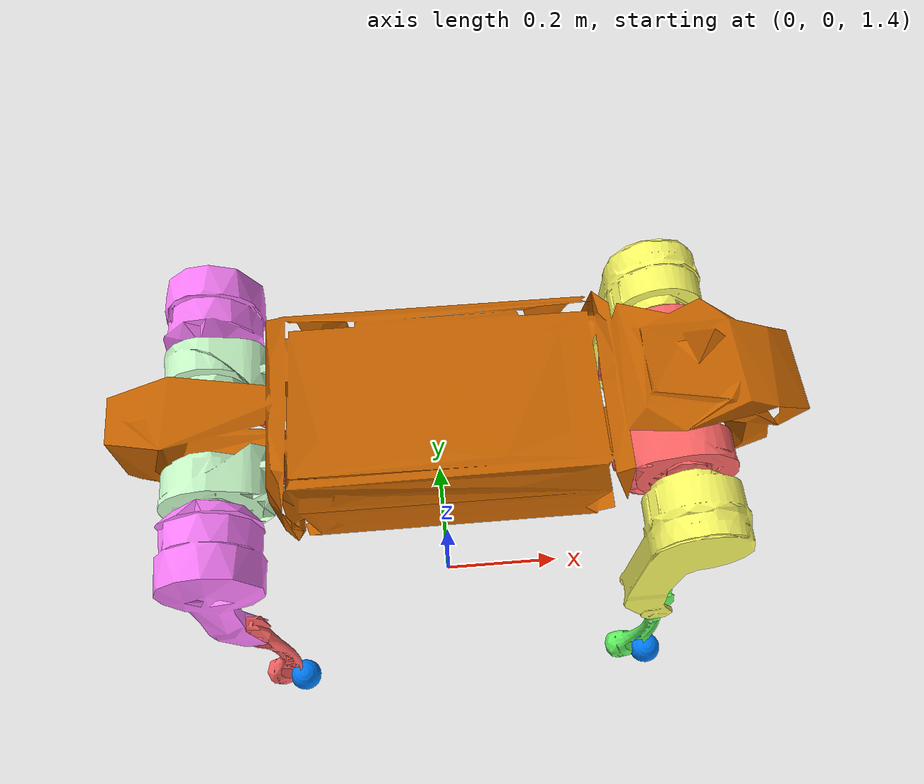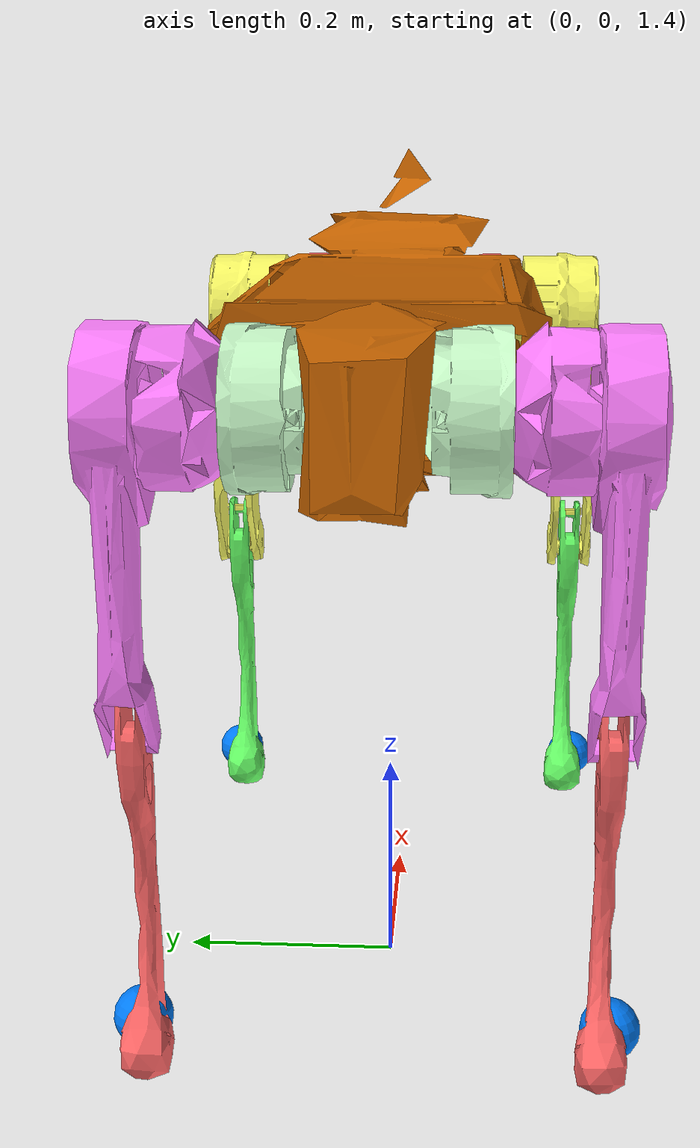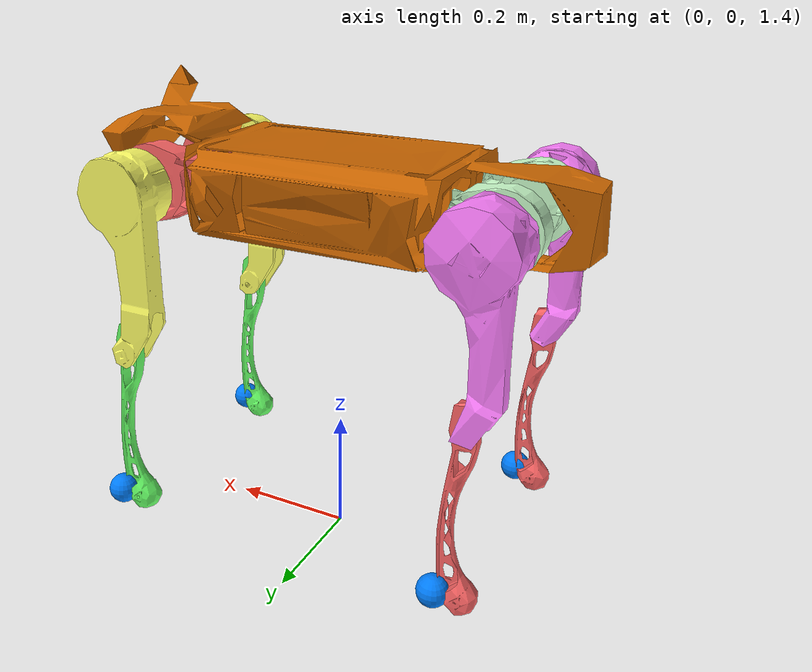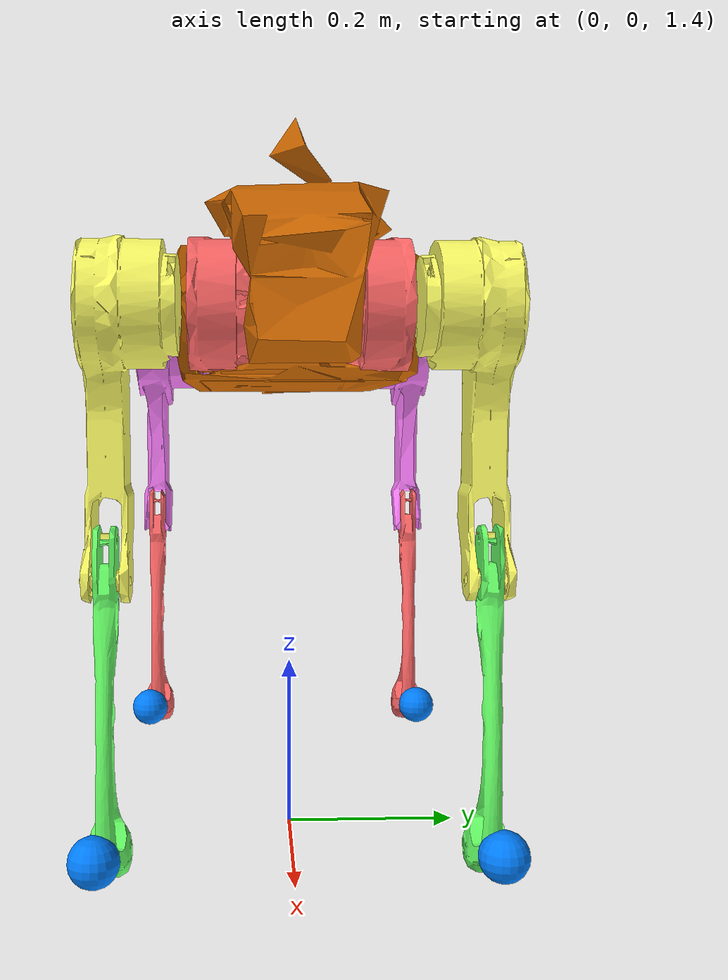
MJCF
<mujoco model="galileo_mini15">
    <compiler angle='radian' eulerseq="XYZ" meshdir="../meshes/" autolimits="true" />

    <default>
        <geom contype="0" conaffinity="0" solref="0.005 1" condim="3" friction="1 1" />
        <equality solref="0.005 1" />
        <default class="collision">
            <geom contype="1" group="3" type="capsule" />
            <default class="collision-left">
                <geom contype="2" conaffinity="4" />
            </default>
            <default class="collision-right">
                <geom contype="4" conaffinity="2" />
            </default>
        </default>
    </default>

    <asset>
        <mesh name="base_link_mesh_visual" file="trunk.STL" scale='1 1 1' />
        <mesh name="base_link_mesh_collision" file="trunk.STL" scale='1 1 1' />
        <mesh name="left_front_abad_mesh_visual" file="FL_abd_link.STL"
            scale='1 1 1' />
        <mesh name="left_front_abad_mesh_collision" file="FL_abd_link.STL"
            scale='1 1 1' />
        <mesh name="left_front_hip_mesh_visual" file="FL_hip_link.STL" scale='1 1 1' />
        <mesh name="left_front_hip_mesh_collision" file="FL_hip_link.STL"
            scale='1 1 1' />
        <mesh name="left_front_knee_mesh_visual" file="FL_knee_link.STL"
            scale='1 1 1' />
        <mesh name="left_front_knee_mesh_collision" file="FL_knee_link.STL"
            scale='1 1 1' />
        <mesh name="left_rear_abad_mesh_visual" file="RL_abd_link.STL" scale='1 1 1' />
        <mesh name="left_rear_abad_mesh_collision" file="RL_abd_link.STL"
            scale='1 1 1' />
        <mesh name="left_rear_hip_mesh_visual" file="RL_hip_link.STL" scale='1 1 1' />
        <mesh name="left_rear_hip_mesh_collision" file="RL_hip_link.STL"
            scale='1 1 1' />
        <mesh name="left_rear_knee_mesh_visual" file="RL_knee_link.STL"
            scale='1 1 1' />
        <mesh name="left_rear_knee_mesh_collision" file="RL_knee_link.STL"
            scale='1 1 1' />
        <mesh name="right_front_abad_mesh_visual" file="FL_abd_link.STL"
            scale='1.0 -1.0 1.0' />
        <mesh name="right_front_abad_mesh_collision" file="FL_abd_link.STL"
            scale='1.0 -1.0 1.0' />
        <mesh name="right_front_hip_mesh_visual" file="FL_hip_link.STL"
            scale='1.0 -1.0 1.0' />
        <mesh name="right_front_hip_mesh_collision" file="FL_hip_link.STL"
            scale='1.0 -1.0 1.0' />
        <mesh name="right_front_knee_mesh_visual" file="FL_knee_link.STL"
            scale='1.0 -1.0 1.0' />
        <mesh name="right_front_knee_mesh_collision" file="FL_knee_link.STL"
            scale='1.0 -1.0 1.0' />
        <mesh name="right_rear_abad_mesh_visual" file="RL_abd_link.STL"
            scale='1.0 -1.0 1.0' />
        <mesh name="right_rear_abad_mesh_collision" file="RL_abd_link.STL"
            scale='1.0 -1.0 1.0' />
        <mesh name="right_rear_hip_mesh_visual" file="RL_hip_link.STL"
            scale='1.0 -1.0 1.0' />
        <mesh name="right_rear_hip_mesh_collision" file="RL_hip_link.STL"
            scale='1.0 -1.0 1.0' />
        <mesh name="right_rear_knee_mesh_visual" file="RL_knee_link.STL"
            scale='1.0 -1.0 1.0' />
        <mesh name="right_rear_knee_mesh_collision" file="RL_knee_link.STL"
            scale='1.0 -1.0 1.0' />
        <!-- asset auto generate -->
    </asset>

    <worldbody>
        <body name='base_link' pos='0 0 2' euler='0 0 0'>
            <inertial pos="0.04811 0.0070863 0.010607" mass="9.2006"
                fullinertia="0.049689 0.11274 0.13302 0.00053321 -0.0010827 -6.3635e-05" />
            <freejoint />
            <site name="imu" size="0.01" pos="0 0 0" />
            <geom type='mesh' mesh='base_link_mesh_visual' pos='0 0 0' euler='0 0 0'
                rgba="0.8 0.4 0 1" />
            <geom type='mesh' mesh='base_link_mesh_collision' pos='0 0 0' euler='0 0 0'
                class="collision" />
            <!-- base_link site geom -->

            <body name='left_front_abad' pos='0.2065 0.065 0' euler='0 0 0'>
                <inertial pos="0.074261 0.010662 0.00797" mass="1.748"
                    fullinertia="0.000667447 0.00144482 0.00107312 -7.2909e-05 -1.0214e-05 5.08e-08" />
                <joint name='idx01_left_front_abad' type='hinge' axis='1 0 0' limited='true'
                    range='-0.80285 0.80285' damping='1' />
                <geom type='mesh' mesh='left_front_abad_mesh_visual' pos='0 0 0' euler='0 0 0'
                    rgba="1 0.4 0.4 1" />
                <geom type='mesh' mesh='left_front_abad_mesh_collision' pos='0 0 0' euler='0 0 0'
                    class="collision" />
                <!-- left_front_abad site geom -->

                <body name='left_front_hip' pos='0.08 0.119 0' euler='0 0 0'>
                    <inertial pos="-0.0014 -0.0344 -0.0174" mass="2.22606"
                        fullinertia="0.009416249 0.0090907891 0.0023041271 0.0001223515 -0.0004705786 0.0013313752" />
                    <joint name='idx02_left_front_hip' type='hinge' axis='0 1 0' limited='true'
                        range='-1.0472 4.1888' damping='1' />
                    <geom type='mesh' mesh='left_front_hip_mesh_visual' pos='0 0 0' euler='0 0 0'
                        rgba="1 1 0.4 1" />
                    <geom type='mesh' mesh='left_front_hip_mesh_collision' pos='0 0 0' euler='0 0 0'
                        class="collision" />
                    <!-- left_front_hip site geom -->

                    <body name='left_front_knee' pos='0 0.01 -0.26' euler='0 0 0'>
                        <inertial pos="0.0034 -0.0105 -0.13" mass="0.3261"
                            fullinertia="0.0046064111 0.0046485626 8.17992e-05 -9.9e-09 1.8937e-06 -4.4248e-06" />
                        <joint name='idx03_left_front_knee' type='hinge' axis='0 1 0' limited='true'
                            range='-2.6965 -0.9163' damping='1' />
                        <geom type='mesh' mesh='left_front_knee_mesh_visual' pos='0 0 0'
                            euler='0 0 0' rgba="0.4 1 0.4 1" />
                        <geom type='mesh' mesh='left_front_knee_mesh_collision' pos='0 0 0'
                            euler='0 0 0' class="collision" />
                        <!-- left_front_knee site geom -->

                        <body name='left_front_foot' pos='0.032939 0 -0.26149' euler='0 0 0'>
                            <inertial pos="0 0 0" mass="0.000204873572147578"
                                fullinertia="1.09600066619755e-09 1.09600066619755e-09 1.09600066619755e-09 0 0 0" />
                            <!-- left_front_foot joint -->
                            <geom type="sphere" size="0.025" pos='0 0 0'
                                euler='0 0 0' rgba="0 0.5 1 1" />
                            <geom type="sphere" size="0.025" pos='0 0 0'
                                euler='0 0 0' class="collision" />
                            <!-- left_front_foot site geom -->
                            <!-- left_front_foot child body -->
                        </body>
                        <!-- left_front_knee child body -->
                    </body>
                    <!-- left_front_hip child body -->
                </body>
                <!-- left_front_abad child body -->
            </body>

            <body name='left_rear_abad' pos='-0.2065 0.065 0' euler='0 0 0'>
                <inertial pos="0.074261 0.010662 0.00797" mass="1.748"
                    fullinertia="0.000667447 0.00144482 0.00107312 7.2909e-05 1.0214e-05 5.08e-08" />
                <joint name='idx05_left_rear_abad' type='hinge' axis='1 0 0' limited='true'
                    range='-0.80285 0.80285' damping='1' />
                <geom type='mesh' mesh='left_rear_abad_mesh_visual' pos='0 0 0' euler='0 0 0'
                    rgba="0.8 1.0 0.8 1" />
                <geom type='mesh' mesh='left_rear_abad_mesh_collision' pos='0 0 0' euler='0 0 0'
                    class="collision" />
                <!-- left_rear_abad site geom -->

                <body name='left_rear_hip' pos='-0.08 0.119 0' euler='0 0 0'>
                    <inertial pos="-0.0014 -0.0344 -0.0174" mass="2.22606"
                        fullinertia="0.009416249 0.0090907891 0.0023041271 0.0001223515 -0.0004705786 0.0013313752" />
                    <joint name='idx06_left_rear_hip' type='hinge' axis='0 1 0' limited='true'
                        range='-1.0472 4.1888' damping='1' />
                    <geom type='mesh' mesh='left_rear_hip_mesh_visual' pos='0 0 0' euler='0 0 0'
                        rgba="1 0.5 1 1" />
                    <geom type='mesh' mesh='left_rear_hip_mesh_collision' pos='0 0 0' euler='0 0 0'
                        class="collision" />
                    <!-- left_rear_hip site geom -->

                    <body name='left_rear_knee' pos='0 0.01 -0.26' euler='0 0 0'>
                        <inertial pos="0.0034 -0.0105 -0.13" mass="0.3261"
                            fullinertia="0.0046064111 0.0046485626 8.17992e-05 -9.9e-09 1.8937e-06 -4.4248e-06" />
                        <joint name='idx07_left_rear_knee' type='hinge' axis='0 1 0' limited='true'
                            range='-2.6965 -0.9163' damping='1' />
                        <geom type='mesh' mesh='left_rear_knee_mesh_visual' pos='0 0 0'
                            euler='0 0 0' rgba="1 0.4 0.4 1" />
                        <geom type='mesh' mesh='left_rear_knee_mesh_collision' pos='0 0 0'
                            euler='0 0 0' class="collision" />
                        <!-- left_rear_knee site geom -->

                        <body name='left_rear_foot' pos='0.032939 0 -0.26149' euler='0 0 0'>
                            <inertial pos="0 0 0" mass="0.000204873572147578"
                                fullinertia="1.09600066619755e-09 1.09600066619755e-09 1.09600066619755e-09 0 0 0" />
                            <!-- left_rear_foot joint -->
                            <geom type="sphere" size="0.025" pos='0 0 0'
                                euler='0 0 0' rgba="0 0.5 1 1" />
                            <geom type="sphere" size="0.025" pos='0 0 0'
                                euler='0 0 0' class="collision" />
                            <!-- left_rear_foot site geom -->
                            <!-- left_rear_foot child body -->
                        </body>
                        <!-- left_rear_knee child body -->
                    </body>
                    <!-- left_rear_hip child body -->
                </body>
                <!-- left_rear_abad child body -->
            </body>

            <body name='right_front_abad' pos='0.2065 -0.065 0.0' euler='-0.0 0.0 -0.0'>
                <inertial pos="0.074261 -0.010662 0.00797" mass="1.748"
                    fullinertia="0.000667447 0.00144482 0.00107312 7.2909e-05 -1.0214e-05 -5.08e-08" />
                <joint name='idx09_right_front_abad' type='hinge' axis='1 0 0' limited='true'
                    range='-0.80285 0.80285' damping='1' />
                <geom type='mesh' mesh='right_front_abad_mesh_visual' pos='0 0 0' euler='0 0 0'
                    rgba="1 0.4 0.4 1" />
                <geom type='mesh' mesh='right_front_abad_mesh_collision' pos='0 0 0' euler='0 0 0'
                    class="collision" />
                <!-- right_front_abad site geom -->

                <body name='right_front_hip' pos='0.08 -0.119 0.0' euler='-0.0 0.0 -0.0'>
                    <inertial pos="-0.0014 0.0344 -0.0174" mass="2.22606"
                        fullinertia="0.009416249 0.0090907891 0.0023041271 -0.0001223515 -0.0004705786 -0.0013313752" />
                    <joint name='idx10_right_front_hip' type='hinge' axis='0 1 0' limited='true'
                        range='-1.0472 4.1888' damping='1' />
                    <geom type='mesh' mesh='right_front_hip_mesh_visual' pos='0 0 0' euler='0 0 0'
                        rgba="1 1 0.4 1" />
                    <geom type='mesh' mesh='right_front_hip_mesh_collision' pos='0 0 0'
                        euler='0 0 0' class="collision" />
                    <!-- right_front_hip site geom -->

                    <body name='right_front_knee' pos='0.0 -0.01 -0.26' euler='-0.0 0.0 -0.0'>
                        <inertial pos="0.0034 0.0105 -0.13" mass="0.3261"
                            fullinertia="0.0046064111 0.0046485626 8.17992e-05 9.9e-09 1.8937e-06 4.4248e-06" />
                        <joint name='idx11_right_front_knee' type='hinge' axis='0 1 0'
                            limited='true' range='-2.6965 -0.9163' damping='1' />
                        <geom type='mesh' mesh='right_front_knee_mesh_visual' pos='0 0 0'
                            euler='0 0 0' rgba="0.4 1 0.4 1" />
                        <geom type='mesh' mesh='right_front_knee_mesh_collision' pos='0 0 0'
                            euler='0 0 0' class="collision" />
                        <!-- right_front_knee site geom -->

                        <body name='right_front_foot' pos='0.032939 -0.0 -0.26149'
                            euler='-0.0 0.0 -0.0'>
                            <inertial pos="0.0 -0.0 0.0" mass="0.000204873572147578"
                                fullinertia="1.09600066619755e-09 1.09600066619755e-09 1.09600066619755e-09 -0.0 0.0 -0.0" />
                            <!-- right_front_foot joint -->
                            <geom type="sphere" size="0.025" pos='0 0 0'
                                euler='0 0 0' rgba="0 0.5 1 1" />
                            <geom type="sphere" size="0.025" pos='0 0 0'
                                euler='0 0 0' class="collision" />
                            <!-- right_front_foot site geom -->
                            <!-- right_front_foot child body -->
                        </body>
                        <!-- right_front_knee child body -->
                    </body>
                    <!-- right_front_hip child body -->
                </body>
                <!-- right_front_abad child body -->
            </body>

            <body name='right_rear_abad' pos='-0.2065 -0.065 0.0' euler='-0.0 0.0 -0.0'>
                <inertial pos="0.074261 -0.010662 0.00797" mass="1.748"
                    fullinertia="0.000667447 0.00144482 0.00107312 -7.2909e-05 1.0214e-05 -5.08e-08" />
                <joint name='idx13_right_rear_abad' type='hinge' axis='1 0 0' limited='true'
                    range='-0.80285 0.80285' damping='1' />
                <geom type='mesh' mesh='right_rear_abad_mesh_visual' pos='0 0 0' euler='0 0 0'
                    rgba="0.8 1.0 0.8 1" />
                <geom type='mesh' mesh='right_rear_abad_mesh_collision' pos='0 0 0' euler='0 0 0'
                    class="collision" />
                <!-- right_rear_abad site geom -->

                <body name='right_rear_hip' pos='-0.08 -0.119 0.0' euler='-0.0 0.0 -0.0'>
                    <inertial pos="-0.0014 0.0344 -0.0174" mass="2.22606"
                        fullinertia="0.009416249 0.0090907891 0.0023041271 -0.0001223515 -0.0004705786 -0.0013313752" />
                    <joint name='idx14_right_rear_hip' type='hinge' axis='0 1 0' limited='true'
                        range='-1.0472 4.1888' damping='1' />
                    <geom type='mesh' mesh='right_rear_hip_mesh_visual' pos='0 0 0' euler='0 0 0'
                        rgba="1 0.5 1 1" />
                    <geom type='mesh' mesh='right_rear_hip_mesh_collision' pos='0 0 0' euler='0 0 0'
                        class="collision" />
                    <!-- right_rear_hip site geom -->

                    <body name='right_rear_knee' pos='0.0 -0.01 -0.26' euler='-0.0 0.0 -0.0'>
                        <inertial pos="0.0034 0.0105 -0.13" mass="0.3261"
                            fullinertia="0.0046064111 0.0046485626 8.17992e-05 9.9e-09 1.8937e-06 4.4248e-06" />
                        <joint name='idx15_right_rear_knee' type='hinge' axis='0 1 0' limited='true'
                            range='-2.6965 -0.9163' damping='1' />
                        <geom type='mesh' mesh='right_rear_knee_mesh_visual' pos='0 0 0'
                            euler='0 0 0' rgba="1 0.4 0.4 1" />
                        <geom type='mesh' mesh='right_rear_knee_mesh_collision' pos='0 0 0'
                            euler='0 0 0' class="collision" />
                        <!-- right_rear_knee site geom -->

                        <body name='right_rear_foot' pos='0.032939 -0.0 -0.26149'
                            euler='-0.0 0.0 -0.0'>
                            <inertial pos="0.0 -0.0 0.0" mass="0.000204873572147578"
                                fullinertia="1.09600066619755e-09 1.09600066619755e-09 1.09600066619755e-09 -0.0 0.0 -0.0" />
                            <!-- right_rear_foot joint -->
                            <geom type="sphere" size="0.025" pos='0 0 0'
                                euler='0 0 0' rgba="0 0.5 1 1" />
                            <geom type="sphere" size="0.025" pos='0 0 0'
                                euler='0 0 0' class="collision" />
                            <!-- right_rear_foot site geom -->
                            <!-- right_rear_foot child body -->
                        </body>
                        <!-- right_rear_knee child body -->
                    </body>
                    <!-- right_rear_hip child body -->
                </body>
                <!-- right_rear_abad child body -->
            </body>
            <!-- base_link child body -->
        </body>
        <!-- world child body -->
    </worldbody>

    <actuator>
        <motor name='motor_idx01_left_front_abad' joint='idx01_left_front_abad' ctrlrange='-100 100' />
        <motor name='motor_idx02_left_front_hip' joint='idx02_left_front_hip' ctrlrange='-100 100' />
        <motor name='motor_idx03_left_front_knee' joint='idx03_left_front_knee' ctrlrange='-150 150' />
        <motor name='motor_idx05_left_rear_abad' joint='idx05_left_rear_abad' ctrlrange='-100 100' />
        <motor name='motor_idx06_left_rear_hip' joint='idx06_left_rear_hip' ctrlrange='-100 100' />
        <motor name='motor_idx07_left_rear_knee' joint='idx07_left_rear_knee' ctrlrange='-150 150' />
        <motor name='motor_idx09_right_front_abad' joint='idx09_right_front_abad'
            ctrlrange='-100 100' />
        <motor name='motor_idx10_right_front_hip' joint='idx10_right_front_hip' ctrlrange='-100 100' />
        <motor name='motor_idx11_right_front_knee' joint='idx11_right_front_knee'
            ctrlrange='-150 150' />
        <motor name='motor_idx13_right_rear_abad' joint='idx13_right_rear_abad' ctrlrange='-100 100' />
        <motor name='motor_idx14_right_rear_hip' joint='idx14_right_rear_hip' ctrlrange='-100 100' />
        <motor name='motor_idx15_right_rear_knee' joint='idx15_right_rear_knee' ctrlrange='-150 150' />
        <!-- actuator auto generate -->
    </actuator>

    <sensor>
        <jointpos name='jointpos_idx01_left_front_abad' joint='idx01_left_front_abad' />
        <jointvel name='jointvel_idx01_left_front_abad' joint='idx01_left_front_abad' />

        <jointpos name='jointpos_idx02_left_front_hip' joint='idx02_left_front_hip' />
        <jointvel name='jointvel_idx02_left_front_hip' joint='idx02_left_front_hip' />

        <jointpos name='jointpos_idx03_left_front_knee' joint='idx03_left_front_knee' />
        <jointvel name='jointvel_idx03_left_front_knee' joint='idx03_left_front_knee' />

        <jointpos name='jointpos_idx05_left_rear_abad' joint='idx05_left_rear_abad' />
        <jointvel name='jointvel_idx05_left_rear_abad' joint='idx05_left_rear_abad' />

        <jointpos name='jointpos_idx06_left_rear_hip' joint='idx06_left_rear_hip' />
        <jointvel name='jointvel_idx06_left_rear_hip' joint='idx06_left_rear_hip' />

        <jointpos name='jointpos_idx07_left_rear_knee' joint='idx07_left_rear_knee' />
        <jointvel name='jointvel_idx07_left_rear_knee' joint='idx07_left_rear_knee' />

        <jointpos name='jointpos_idx09_right_front_abad' joint='idx09_right_front_abad' />
        <jointvel name='jointvel_idx09_right_front_abad' joint='idx09_right_front_abad' />

        <jointpos name='jointpos_idx10_right_front_hip' joint='idx10_right_front_hip' />
        <jointvel name='jointvel_idx10_right_front_hip' joint='idx10_right_front_hip' />

        <jointpos name='jointpos_idx11_right_front_knee' joint='idx11_right_front_knee' />
        <jointvel name='jointvel_idx11_right_front_knee' joint='idx11_right_front_knee' />

        <jointpos name='jointpos_idx13_right_rear_abad' joint='idx13_right_rear_abad' />
        <jointvel name='jointvel_idx13_right_rear_abad' joint='idx13_right_rear_abad' />

        <jointpos name='jointpos_idx14_right_rear_hip' joint='idx14_right_rear_hip' />
        <jointvel name='jointvel_idx14_right_rear_hip' joint='idx14_right_rear_hip' />

        <jointpos name='jointpos_idx15_right_rear_knee' joint='idx15_right_rear_knee' />
        <jointvel name='jointvel_idx15_right_rear_knee' joint='idx15_right_rear_knee' />

        <!-- sensor auto generate -->
    </sensor>
    <sensor>
        <framequat name="body-orientation" objtype="site" objname="imu" />
        <gyro name="body-angular-velocity" site="imu" />
        <framepos name="body-linear-pos" objtype="site" objname="imu" />
        <velocimeter name="body-linear-vel" site="imu" />
        <accelerometer name="body-linear-acceleration" site="imu" />
    </sensor>

</mujoco>
